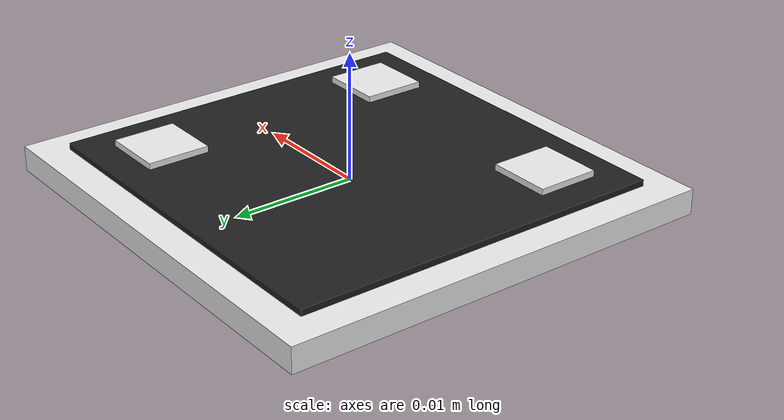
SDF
<?xml version="1.0" ?>
<sdf version="1.7">
  <model name="aruco_marker_101">
    <static>true</static>
    <link name="marker_link">
      <!-- Collision -->
      <collision name="marker_collision">
        <geometry>
          <box>
            <size>0.035 0.035 0.002</size>  <!-- 3.5cm x 3.5cm x 2mm -->
          </box>
        </geometry>
      </collision>

      <!-- Base visual (white background) -->
      <visual name="base">
        <geometry>
          <box>
            <size>0.035 0.035 0.002</size>  <!-- 3.5cm x 3.5cm -->
          </box>
        </geometry>
        <material>
          <script>
            <uri>file://media/materials/scripts/gazebo.material</uri>
            <name>Gazebo/White</name>
          </script>
        </material>
      </visual>

      <visual name="aruco_pattern">
        <pose>0 0 0.001 0 0 0</pose>
        <geometry>
          <box>
            <size>0.03 0.03 0.001</size>  <!-- ArUco 패턴 -->
          </box>
        </geometry>
        <material>
          <script>
            <uri>file://media/materials/scripts/gazebo.material</uri>
            <name>Gazebo/Black</name>
          </script>
        </material>
      </visual>

      <!-- ArUco pattern corners (simplified) -->
      <visual name="corner_1">
        <pose>-0.01 -0.01 0.0015 0 0 0</pose>
        <geometry>
          <box>
            <size>0.005 0.005 0.001</size>
          </box>
        </geometry>
        <material>
          <script>
            <uri>file://media/materials/scripts/gazebo.material</uri>
            <name>Gazebo/White</name>
          </script>
        </material>
      </visual>

      <visual name="corner_2">
        <pose>0.01 -0.01 0.0015 0 0 0</pose>
        <geometry>
          <box>
            <size>0.005 0.005 0.001</size>
          </box>
        </geometry>
        <material>
          <script>
            <uri>file://media/materials/scripts/gazebo.material</uri>
            <name>Gazebo/White</name>
          </script>
        </material>
      </visual>

      <visual name="corner_3">
        <pose>0.01 0.01 0.0015 0 0 0</pose>
        <geometry>
          <box>
            <size>0.005 0.005 0.001</size>
          </box>
        </geometry>
        <material>
          <script>
            <uri>file://media/materials/scripts/gazebo.material</uri>
            <name>Gazebo/White</name>
          </script>
        </material>
      </visual>

      <inertial>
        <mass>0.01</mass>
        <inertia>
          <ixx>0.000001</ixx>
          <iyy>0.000001</iyy>
          <izz>0.000001</izz>
        </inertia>
      </inertial>
    </link>
  </model>
</sdf>
